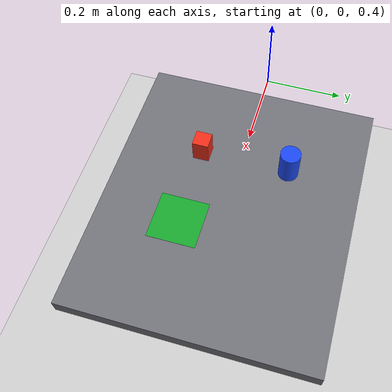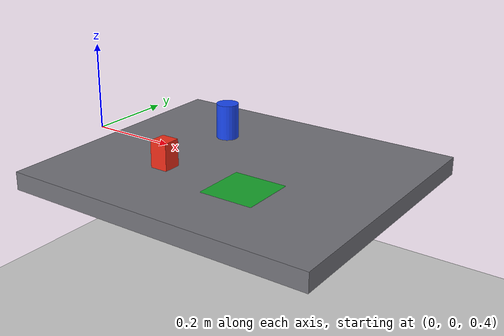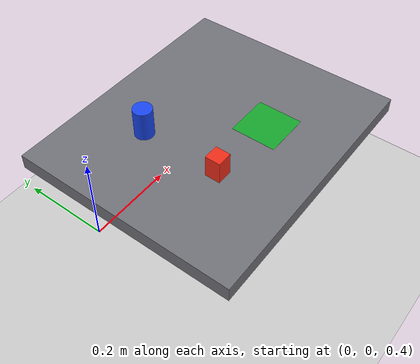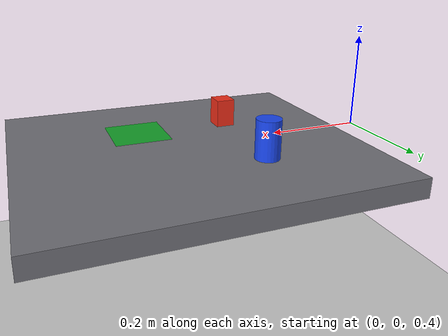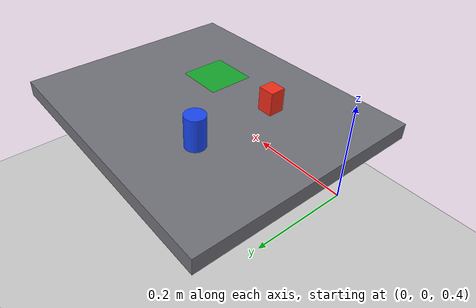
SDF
<?xml version="1.0"?>
<sdf version="1.10">
  <world name="m3_rm75_robotiq2f85_pickplace">
    <gravity>0 0 -9.81</gravity>
    <physics name="1ms" type="ignored"><max_step_size>0.001</max_step_size><real_time_factor>1.0</real_time_factor></physics>
    <plugin filename="gz-sim-physics-system" name="gz::sim::systems::Physics"/>
    <plugin filename="gz-sim-user-commands-system" name="gz::sim::systems::UserCommands"/>
    <plugin filename="gz-sim-scene-broadcaster-system" name="gz::sim::systems::SceneBroadcaster"/>
    <plugin filename="gz-sim-contact-system" name="gz::sim::systems::Contact"/>
    <plugin filename="gz-sim-sensors-system" name="gz::sim::systems::Sensors"><render_engine>ogre2</render_engine></plugin>

    <light name="sun" type="directional"><pose>0 0 10 0 0 0</pose><diffuse>0.8 0.8 0.8 1</diffuse><direction>-0.5 0.1 -0.9</direction></light>
    <model name="ground"><static>true</static><link name="ground_link"><collision name="ground_collision"><geometry><plane><normal>0 0 1</normal><size>10 10</size></plane></geometry></collision><visual name="ground_visual"><geometry><plane><normal>0 0 1</normal><size>10 10</size></plane></geometry></visual></link></model>
    <model name="m3_table"><static>true</static><pose>0.40 0 0.38 0 0 0</pose><link name="table_link"><collision name="table_collision"><geometry><box><size>0.70 0.60 0.04</size></box></geometry></collision><visual name="table_visual"><geometry><box><size>0.70 0.60 0.04</size></box></geometry><material><ambient>0.35 0.35 0.38 1</ambient><diffuse>0.45 0.45 0.48 1</diffuse></material></visual></link></model>
    <model name="m3_destination_marker"><static>true</static><pose>0.48 -0.10 0.4005 0 0 0</pose><link name="marker_link"><visual name="marker_visual"><geometry><box><size>0.12 0.12 0.001</size></box></geometry><material><ambient>0.05 0.55 0.10 0.8</ambient><diffuse>0.05 0.75 0.15 0.8</diffuse></material></visual></link></model>

    <model name="m3_target">
      <pose>0.28 -0.10 0.43 0 0 0</pose>
      <link name="target_link">
        <inertial><mass>0.10</mass><inertia><ixx>0.0000433333</ixx><iyy>0.0000433333</iyy><izz>0.0000266667</izz><ixy>0</ixy><ixz>0</ixz><iyz>0</iyz></inertia></inertial>
        <collision name="target_collision"><geometry><box><size>0.04 0.04 0.06</size></box></geometry></collision>
        <visual name="target_visual"><geometry><box><size>0.04 0.04 0.06</size></box></geometry><material><ambient>0.80 0.12 0.08 1</ambient><diffuse>0.95 0.18 0.10 1</diffuse></material></visual>
      </link>
    </model>
    <model name="m3_distractor">
      <pose>0.28 0.12 0.44 0 0 0</pose>
      <link name="distractor_link">
        <inertial><mass>0.12</mass><inertia><ixx>0.0000715</ixx><iyy>0.0000715</iyy><izz>0.0000375</izz><ixy>0</ixy><ixz>0</ixz><iyz>0</iyz></inertia></inertial>
        <collision name="distractor_collision"><geometry><cylinder><radius>0.025</radius><length>0.08</length></cylinder></geometry></collision>
        <visual name="distractor_visual"><geometry><cylinder><radius>0.025</radius><length>0.08</length></cylinder></geometry><material><ambient>0.08 0.20 0.75 1</ambient><diffuse>0.10 0.28 0.95 1</diffuse></material></visual>
      </link>
    </model>
    <model name="openeta_top_camera"><static>true</static><pose>0 0 1.80 0 1.5707963 0</pose><link name="top_camera_link"><sensor name="openeta_rgbd" type="rgbd_camera"><camera><horizontal_fov>1.047</horizontal_fov><image><width>640</width><height>480</height><format>R8G8B8</format></image><clip><near>0.1</near><far>10.0</far></clip></camera><always_on>true</always_on><update_rate>15</update_rate><topic>openeta_rgbd</topic><gz_frame_id>top_camera_optical_frame</gz_frame_id></sensor></link></model>
  </world>
</sdf>
